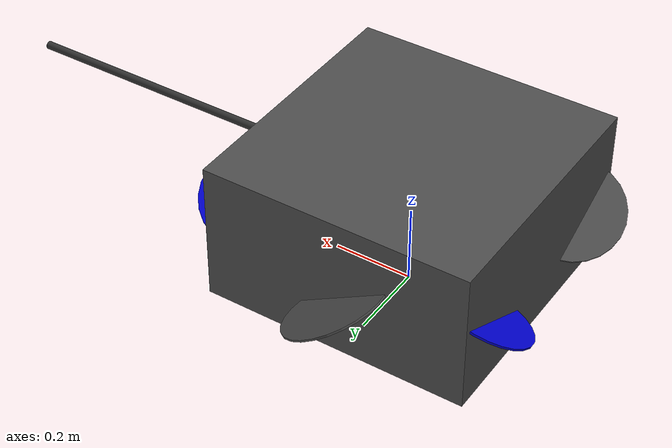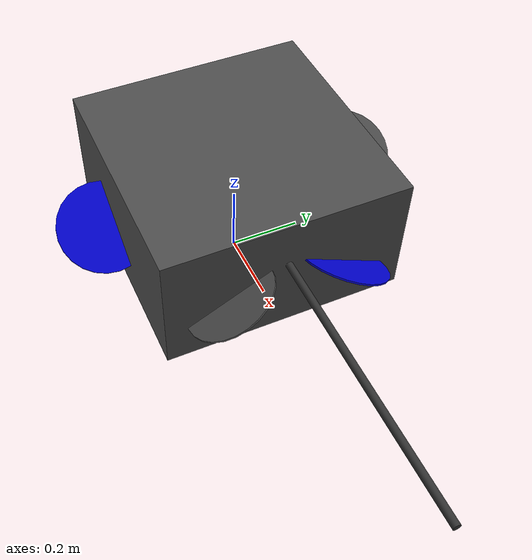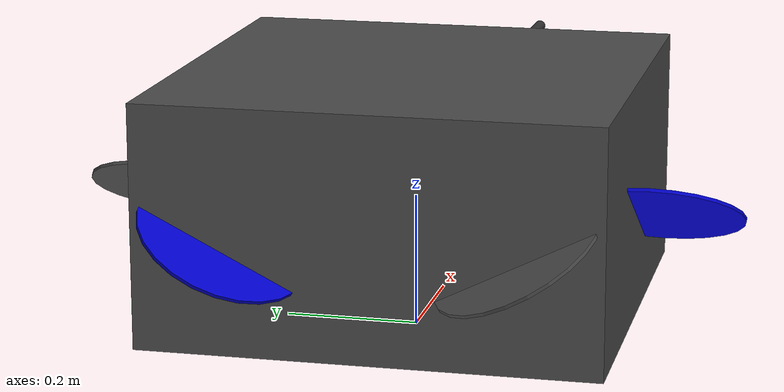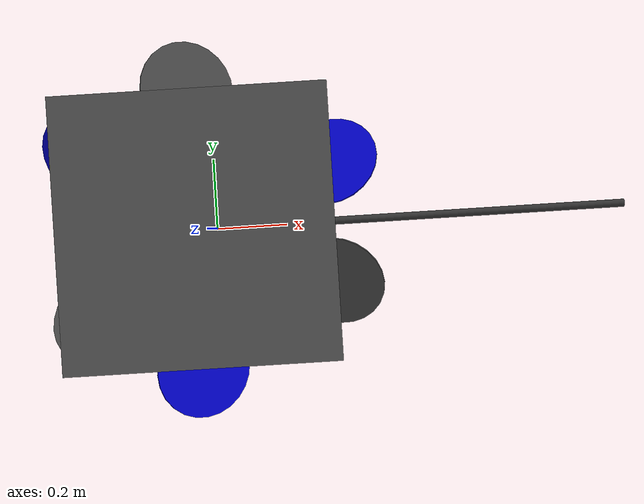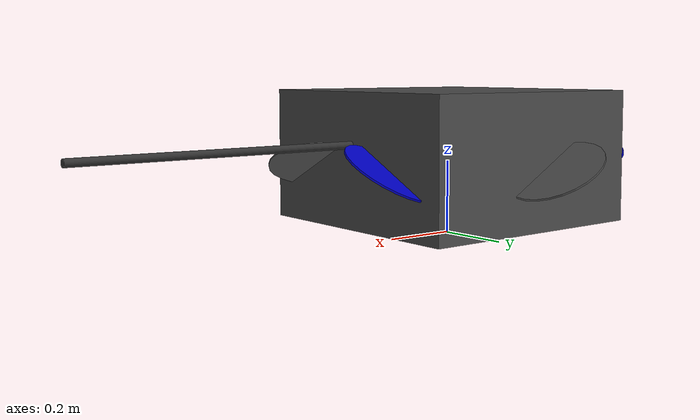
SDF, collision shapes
<?xml version="1.0" encoding="UTF-8"?>
<sdf version='1.9'>
  <model name='hexa_scorpion'>
    <pose>0 0 0.26 0 0 0.0</pose>
    <self_collide>false</self_collide>
    <static>false</static>

    <link name='base_link'>
      <pose>0 0 0 0 0 0</pose>
      <inertial>
        <pose>-0.007 0 -0.031 0 0 0</pose>
        <mass>5.02</mass>
        <inertia>
          <ixx>0.21</ixx>
          <ixy>0</ixy>
          <ixz>0</ixz>
          <iyy>0.215</iyy>
          <iyz>0</iyz>
          <izz>0.4</izz>
        </inertia>
      </inertial>
      <collision name='base_link_collision'>
        <pose>0 0 -0.0415 0 0 0</pose>
        <geometry>
          <box>
            <size>0.67 0.67 0.356</size>
          </box>
        </geometry>
        <surface>
          <contact>
            <ode>
              <min_depth>0.001</min_depth>
              <max_vel>0</max_vel>
            </ode>
          </contact>
          <friction>
            <ode/>
          </friction>
        </surface>
      </collision>
      <visual name='base_link_visual'>
        <pose>0 0 0 0 0 0</pose>
        <geometry>
          <mesh>
            <scale>0.001 0.001 0.001</scale>
            <uri>model://hexa_scorpion/meshes/main_body.stl</uri>
          </mesh>
        </geometry>
        <material>
          <ambient>0.3 0.3 0.3 1</ambient>
          <diffuse>0.3 0.3 0.3 1</diffuse>
          <specular>0.1 0.1 0.1 1</specular>
        </material>
      </visual>
      <gravity>true</gravity>
      <velocity_decay/>

      <!-- IMU sensor (replaces libgazebo_imu_plugin.so) -->
      <sensor name="imu_sensor" type="imu">
        <always_on>1</always_on>
        <update_rate>250</update_rate>
        <imu>
          <angular_velocity>
            <x>
              <noise type="gaussian">
                <mean>0</mean>
                <stddev>0.0003394</stddev>
                <dynamic_bias_stddev>3.8785e-05</dynamic_bias_stddev>
                <dynamic_bias_correlation_time>1000</dynamic_bias_correlation_time>
              </noise>
            </x>
            <y>
              <noise type="gaussian">
                <mean>0</mean>
                <stddev>0.0003394</stddev>
                <dynamic_bias_stddev>3.8785e-05</dynamic_bias_stddev>
                <dynamic_bias_correlation_time>1000</dynamic_bias_correlation_time>
              </noise>
            </y>
            <z>
              <noise type="gaussian">
                <mean>0</mean>
                <stddev>0.0003394</stddev>
                <dynamic_bias_stddev>3.8785e-05</dynamic_bias_stddev>
                <dynamic_bias_correlation_time>1000</dynamic_bias_correlation_time>
              </noise>
            </z>
          </angular_velocity>
          <linear_acceleration>
            <x>
              <noise type="gaussian">
                <mean>0</mean>
                <stddev>0.004</stddev>
                <dynamic_bias_stddev>0.006</dynamic_bias_stddev>
                <dynamic_bias_correlation_time>300</dynamic_bias_correlation_time>
              </noise>
            </x>
            <y>
              <noise type="gaussian">
                <mean>0</mean>
                <stddev>0.004</stddev>
                <dynamic_bias_stddev>0.006</dynamic_bias_stddev>
                <dynamic_bias_correlation_time>300</dynamic_bias_correlation_time>
              </noise>
            </y>
            <z>
              <noise type="gaussian">
                <mean>0</mean>
                <stddev>0.004</stddev>
                <dynamic_bias_stddev>0.006</dynamic_bias_stddev>
                <dynamic_bias_correlation_time>300</dynamic_bias_correlation_time>
              </noise>
            </z>
          </linear_acceleration>
        </imu>
      </sensor>

      <!-- Magnetometer sensor (replaces libgazebo_magnetometer_plugin.so) -->
      <sensor name="magnetometer_sensor" type="magnetometer">
        <always_on>1</always_on>
        <update_rate>100</update_rate>
        <magnetometer>
          <x>
            <noise type="gaussian">
              <stddev>0.0001</stddev>
            </noise>
          </x>
          <y>
            <noise type="gaussian">
              <stddev>0.0001</stddev>
            </noise>
          </y>
          <z>
            <noise type="gaussian">
              <stddev>0.0001</stddev>
            </noise>
          </z>
        </magnetometer>
      </sensor>

      <!-- Barometer sensor (replaces libgazebo_barometer_plugin.so) -->
      <sensor name="air_pressure_sensor" type="air_pressure">
        <always_on>1</always_on>
        <update_rate>50</update_rate>
        <air_pressure>
          <pressure>
            <noise type="gaussian">
              <mean>0</mean>
              <stddev>0.01</stddev>
            </noise>
          </pressure>
        </air_pressure>
      </sensor>

      <!-- GPS / NavSat sensor (replaces included gps model) -->
      <sensor name="navsat_sensor" type="navsat">
        <always_on>1</always_on>
        <update_rate>30</update_rate>
      </sensor>
    </link>

    <!-- Forward-facing monocular camera for visual servoing -->
    <link name="camera_link">
      <pose relative_to="base_link">0.12 0.0 0.12 0 0 0</pose>
      <inertial>
        <pose>0.03 0.03 0.03 0 0 0</pose>
        <mass>0.050</mass>
        <inertia>
          <ixx>0.00004</ixx>
          <ixy>0</ixy>
          <ixz>0</ixz>
          <iyy>0.00004</iyy>
          <iyz>0</iyz>
          <izz>0.00004</izz>
        </inertia>
      </inertial>
      <visual name="camera_housing_visual">
        <geometry>
          <box>
            <size>0.02 0.04 0.04</size>
          </box>
        </geometry>
      </visual>
      <visual name="camera_lens_visual">
        <pose>0.015 0 0 0 1.5707 0</pose>
        <geometry>
          <cylinder>
            <radius>0.008</radius>
            <length>0.01</length>
          </cylinder>
        </geometry>
      </visual>
      <sensor name="front_camera" type="camera">
        <gz_frame_id>camera_link</gz_frame_id>
        <topic>/hexa_scorpion/camera/image_raw</topic>
        <pose>0 0 0 0 0 0</pose>
        <camera>
          <horizontal_fov>1.204106566</horizontal_fov>
          <image>
            <width>1024</width>
            <height>768</height>
          </image>
          <clip>
            <near>0.1</near>
            <far>3000</far>
          </clip>
        </camera>
        <always_on>1</always_on>
        <update_rate>30</update_rate>
        <visualize>true</visualize>
      </sensor>
      <gravity>true</gravity>
      <velocity_decay/>
    </link>
    <joint name="camera_joint" type="fixed">
      <parent>base_link</parent>
      <child>camera_link</child>
      <pose relative_to="base_link">0.12 0.0 0.12 0 0 0</pose>
    </joint>

    <!-- ============== Rotors ============== -->

    <!-- Rotor 0: mid_right, CW, axis=[0.5, 0, 0.866025] in FLU -->
    <link name='rotor_0'>
      <pose>-0.02885 -0.367 -0.05993 0 -0.523698 -3.141592653</pose>
      <inertial>
        <pose>0 0 0 0 0 0</pose>
        <mass>0.005</mass>
        <inertia>
          <ixx>9.75e-07</ixx>
          <ixy>0</ixy>
          <ixz>0</ixz>
          <iyy>0.000273104</iyy>
          <iyz>0</iyz>
          <izz>0.000274004</izz>
        </inertia>
      </inertial>
      <collision name='rotor_0_collision'>
        <pose>0 0 0 0 0 0</pose>
        <geometry>
          <cylinder>
            <length>0.005</length>
            <radius>0.128</radius>
          </cylinder>
        </geometry>
        <surface>
          <contact>
            <ode/>
          </contact>
          <friction>
            <ode/>
          </friction>
        </surface>
      </collision>
      <visual name='rotor_0_visual'>
        <pose>0 0 0 0 0 0</pose>
        <geometry>
          <mesh>
            <scale>0.001 0.001 0.001</scale>
            <uri>model://hexa_scorpion/meshes/prop_ccw_assembly_remeshed_v3.stl</uri>
          </mesh>
        </geometry>
        <material>
          <ambient>0.0 0.0 0.8 1</ambient>
          <diffuse>0.0 0.0 0.8 1</diffuse>
          <specular>0.1 0.1 0.5 1</specular>
        </material>
      </visual>
      <gravity>true</gravity>
      <velocity_decay/>
    </link>
    <joint name='rotor_0_joint' type='revolute'>
      <child>rotor_0</child>
      <parent>base_link</parent>
      <axis>
        <xyz expressed_in="__model__">0.5 0 0.866025</xyz>
        <limit>
          <lower>-1e+16</lower>
          <upper>1e+16</upper>
        </limit>
        <dynamics>
          <damping>0.005</damping>
        </dynamics>
      </axis>
    </joint>

    <!-- Rotor 1: mid_left, CCW, axis=[0.5, 0, 0.866025] in FLU -->
    <link name='rotor_1'>
      <pose>-0.02885 0.367 -0.05993 0 0.523698 0</pose>
      <inertial>
        <pose>0 0 0 0 0 0</pose>
        <mass>0.005</mass>
        <inertia>
          <ixx>9.75e-07</ixx>
          <ixy>0</ixy>
          <ixz>0</ixz>
          <iyy>0.000273104</iyy>
          <iyz>0</iyz>
          <izz>0.000274004</izz>
        </inertia>
      </inertial>
      <collision name='rotor_1_collision'>
        <pose>0 0 0 0 0 0</pose>
        <geometry>
          <cylinder>
            <length>0.005</length>
            <radius>0.128</radius>
          </cylinder>
        </geometry>
        <surface>
          <contact>
            <ode/>
          </contact>
          <friction>
            <ode/>
          </friction>
        </surface>
      </collision>
      <visual name='rotor_1_visual'>
        <pose>0 0 0 0 0 0</pose>
        <geometry>
          <mesh>
            <scale>0.001 0.001 0.001</scale>
            <uri>model://hexa_scorpion/meshes/prop_cw_assembly_remeshed_v3.stl</uri>
          </mesh>
        </geometry>
        <material>
          <ambient>0.3 0.3 0.3 1</ambient>
          <diffuse>0.3 0.3 0.3 1</diffuse>
          <specular>0.1 0.1 0.1 1</specular>
        </material>
      </visual>
      <gravity>true</gravity>
      <velocity_decay/>
    </link>
    <joint name='rotor_1_joint' type='revolute'>
      <child>rotor_1</child>
      <parent>base_link</parent>
      <axis>
        <xyz expressed_in="__model__">0.5 0 0.866025</xyz>
        <limit>
          <lower>-1e+16</lower>
          <upper>1e+16</upper>
        </limit>
        <dynamics>
          <damping>0.005</damping>
        </dynamics>
      </axis>
    </joint>

    <!-- Rotor 2: front_left, CW, axis=[-0.251, 0.428, 0.866025] in FLU -->
    <link name='rotor_2'>
      <pose>0.33196 0.15903 -0.05993 0 -0.523598 -1.04719</pose>
      <inertial>
        <pose>0 0 0 0 0 0</pose>
        <mass>0.005</mass>
        <inertia>
          <ixx>9.75e-07</ixx>
          <ixy>0</ixy>
          <ixz>0</ixz>
          <iyy>0.000273104</iyy>
          <iyz>0</iyz>
          <izz>0.000274004</izz>
        </inertia>
      </inertial>
      <collision name='rotor_2_collision'>
        <pose>0 0 0 0 0 0</pose>
        <geometry>
          <cylinder>
            <length>0.005</length>
            <radius>0.128</radius>
          </cylinder>
        </geometry>
        <surface>
          <contact>
            <ode/>
          </contact>
          <friction>
            <ode/>
          </friction>
        </surface>
      </collision>
      <visual name='rotor_2_visual'>
        <pose>0 0 0 0 0 0</pose>
        <geometry>
          <mesh>
            <scale>0.001 0.001 0.001</scale>
            <uri>model://hexa_scorpion/meshes/prop_ccw_assembly_remeshed_v3.stl</uri>
          </mesh>
        </geometry>
        <material>
          <ambient>0.0 0.0 0.8 1</ambient>
          <diffuse>0.0 0.0 0.8 1</diffuse>
          <specular>0.1 0.1 0.5 1</specular>
        </material>
      </visual>
      <gravity>true</gravity>
      <velocity_decay/>
    </link>
    <joint name='rotor_2_joint' type='revolute'>
      <child>rotor_2</child>
      <parent>base_link</parent>
      <axis>
        <xyz expressed_in="__model__">-0.251 0.428 0.866025</xyz>
        <limit>
          <lower>-1e+16</lower>
          <upper>1e+16</upper>
        </limit>
        <dynamics>
          <damping>0.005</damping>
        </dynamics>
      </axis>
    </joint>

    <!-- Rotor 3: rear_right, CCW, axis=[-0.251, 0.428, 0.866025] in FLU -->
    <link name='rotor_3'>
      <pose>-0.30371 -0.20797 -0.05993 0 0.523598 2.09439510239</pose>
      <inertial>
        <pose>0 0 0 0 0 0</pose>
        <mass>0.005</mass>
        <inertia>
          <ixx>9.75e-07</ixx>
          <ixy>0</ixy>
          <ixz>0</ixz>
          <iyy>0.000273104</iyy>
          <iyz>0</iyz>
          <izz>0.000274004</izz>
        </inertia>
      </inertial>
      <collision name='rotor_3_collision'>
        <pose>0 0 0 0 0 0</pose>
        <geometry>
          <cylinder>
            <length>0.005</length>
            <radius>0.128</radius>
          </cylinder>
        </geometry>
        <surface>
          <contact>
            <ode/>
          </contact>
          <friction>
            <ode/>
          </friction>
        </surface>
      </collision>
      <visual name='rotor_3_visual'>
        <pose>0 0 0 0 0 0</pose>
        <geometry>
          <mesh>
            <scale>0.001 0.001 0.001</scale>
            <uri>model://hexa_scorpion/meshes/prop_cw_assembly_remeshed_v3.stl</uri>
          </mesh>
        </geometry>
        <material>
          <ambient>0.3 0.3 0.3 1</ambient>
          <diffuse>0.3 0.3 0.3 1</diffuse>
          <specular>0.1 0.1 0.1 1</specular>
        </material>
      </visual>
      <gravity>true</gravity>
      <velocity_decay/>
    </link>
    <joint name='rotor_3_joint' type='revolute'>
      <child>rotor_3</child>
      <parent>base_link</parent>
      <axis>
        <xyz expressed_in="__model__">-0.251 0.428 0.866025</xyz>
        <limit>
          <lower>-1e+16</lower>
          <upper>1e+16</upper>
        </limit>
        <dynamics>
          <damping>0.005</damping>
        </dynamics>
      </axis>
    </joint>

    <!-- Rotor 4: front_right, CCW, axis=[-0.251, -0.428, 0.866025] in FLU -->
    <link name='rotor_4'>
      <pose>0.33196 -0.15903 -0.05993 0.0 0.523598 -2.09439510239</pose>
      <inertial>
        <pose>0 0 0 0 0 0</pose>
        <mass>0.005</mass>
        <inertia>
          <ixx>9.75e-07</ixx>
          <ixy>0</ixy>
          <ixz>0</ixz>
          <iyy>0.000273104</iyy>
          <iyz>0</iyz>
          <izz>0.000274004</izz>
        </inertia>
      </inertial>
      <collision name='rotor_4_collision'>
        <pose>0 0 0 0 0 0</pose>
        <geometry>
          <cylinder>
            <length>0.005</length>
            <radius>0.128</radius>
          </cylinder>
        </geometry>
        <surface>
          <contact>
            <ode/>
          </contact>
          <friction>
            <ode/>
          </friction>
        </surface>
      </collision>
      <visual name='rotor_4_visual'>
        <pose>0 0 0 0 0 0</pose>
        <geometry>
          <mesh>
            <scale>0.001 0.001 0.001</scale>
            <uri>model://hexa_scorpion/meshes/prop_cw_assembly_remeshed_v3.stl</uri>
          </mesh>
        </geometry>
        <material>
          <ambient>0.3 0.3 0.3 1</ambient>
          <diffuse>0.3 0.3 0.3 1</diffuse>
          <specular>0.1 0.1 0.1 1</specular>
        </material>
      </visual>
      <gravity>true</gravity>
      <velocity_decay/>
    </link>
    <joint name='rotor_4_joint' type='revolute'>
      <child>rotor_4</child>
      <parent>base_link</parent>
      <axis>
        <xyz expressed_in="__model__">-0.251 -0.428 0.866025</xyz>
        <limit>
          <lower>-1e+16</lower>
          <upper>1e+16</upper>
        </limit>
        <dynamics>
          <damping>0.005</damping>
        </dynamics>
      </axis>
    </joint>

    <!-- Rotor 5: rear_left, CW, axis=[-0.251, -0.428, 0.866025] in FLU -->
    <link name='rotor_5'>
      <pose>-0.30371 0.20797 -0.05993 0 -0.523598 1.04719</pose>
      <inertial>
        <pose>0 0 0 0 0 0</pose>
        <mass>0.005</mass>
        <inertia>
          <ixx>9.75e-07</ixx>
          <ixy>0</ixy>
          <ixz>0</ixz>
          <iyy>0.000273104</iyy>
          <iyz>0</iyz>
          <izz>0.000274004</izz>
        </inertia>
      </inertial>
      <collision name='rotor_5_collision'>
        <pose>0 0 0 0 0 0</pose>
        <geometry>
          <cylinder>
            <length>0.005</length>
            <radius>0.128</radius>
          </cylinder>
        </geometry>
        <surface>
          <contact>
            <ode/>
          </contact>
          <friction>
            <ode/>
          </friction>
        </surface>
      </collision>
      <visual name='rotor_5_visual'>
        <pose>0 0 0 0 0 0</pose>
        <geometry>
          <mesh>
            <scale>0.001 0.001 0.001</scale>
            <uri>model://hexa_scorpion/meshes/prop_ccw_assembly_remeshed_v3.stl</uri>
          </mesh>
        </geometry>
        <material>
          <ambient>0.0 0.0 0.8 1</ambient>
          <diffuse>0.0 0.0 0.8 1</diffuse>
          <specular>0.1 0.1 0.5 1</specular>
        </material>
      </visual>
      <gravity>true</gravity>
      <velocity_decay/>
    </link>
    <joint name='rotor_5_joint' type='revolute'>
      <child>rotor_5</child>
      <parent>base_link</parent>
      <axis>
        <xyz expressed_in="__model__">-0.251 -0.428 0.866025</xyz>
        <limit>
          <lower>-1e+16</lower>
          <upper>1e+16</upper>
        </limit>
        <dynamics>
          <damping>0.005</damping>
        </dynamics>
      </axis>
    </joint>

    <!-- ============== Force/Torque Sensor Rod ============== -->

    <link name="sim_ft_sensor">
      <pose>0 0 0 0 0 3.141592653</pose>
      <inertial>
        <pose>-0.57 0 0 0 1.57 0</pose>
        <mass>0.1</mass>
        <inertia>
          <ixx>0.00834</ixx>
          <ixy>0</ixy>
          <ixz>0</ixz>
          <iyy>0.00834</iyy>
          <iyz>0</iyz>
          <izz>5e-06</izz>
        </inertia>
      </inertial>
      <collision name='ft_rod_collision'>
        <pose>-0.57 0 0 0 1.57 0</pose>
        <geometry>
          <cylinder>
            <radius>0.01</radius>
            <length>1.01</length>
          </cylinder>
        </geometry>
      </collision>
      <visual name='ft_rod_cylinder'>
        <pose>-0.57 0 0 0 1.57 0</pose>
        <geometry>
          <cylinder>
            <radius>0.01</radius>
            <length>1.0</length>
          </cylinder>
        </geometry>
        <material>
          <ambient>0.2 0.2 0.2 1</ambient>
          <diffuse>0.2 0.2 0.2 1</diffuse>
          <specular>0.1 0.1 0.1 1</specular>
        </material>
      </visual>
      <visual name='ft_sensor_body'>
        <pose>-0.13 0 0 0 1.57 0</pose>
        <geometry>
          <cylinder>
            <radius>0.032</radius>
            <length>0.015</length>
          </cylinder>
        </geometry>
        <material>
          <ambient>0.2 0.2 0.2 1</ambient>
          <diffuse>0.2 0.2 0.2 1</diffuse>
          <specular>0.1 0.1 0.1 1</specular>
        </material>
      </visual>
    </link>
    <joint name='ft_sensor_joint' type='fixed'>
      <child>sim_ft_sensor</child>
      <parent>base_link</parent>
      <pose relative_to="sim_ft_sensor">-0.13 0 0 0 0 0</pose>
      <sensor name="ft_sensor" type="force_torque">
        <always_on>true</always_on>
        <update_rate>100</update_rate>
        <force_torque>
          <frame>child</frame>
          <measure_direction>child_to_parent</measure_direction>
        </force_torque>
      </sensor>
    </joint>

    <!-- ============== Motor Model Plugins ============== -->

    <plugin filename="gz-sim-multicopter-motor-model-system"
            name="gz::sim::systems::MulticopterMotorModel">
      <jointName>rotor_0_joint</jointName>
      <linkName>rotor_0</linkName>
      <turningDirection>cw</turningDirection>
      <timeConstantUp>0.0125</timeConstantUp>
      <timeConstantDown>0.025</timeConstantDown>
      <maxRotVelocity>1800</maxRotVelocity>
      <motorConstant>1.425e-05</motorConstant>
      <momentConstant>0.06</momentConstant>
      <commandSubTopic>command/motor_speed</commandSubTopic>
      <motorNumber>0</motorNumber>
      <rotorDragCoefficient>0.000175</rotorDragCoefficient>
      <rollingMomentCoefficient>1e-06</rollingMomentCoefficient>
      <rotorVelocitySlowdownSim>10</rotorVelocitySlowdownSim>
      <motorType>velocity</motorType>
    </plugin>

    <plugin filename="gz-sim-multicopter-motor-model-system"
            name="gz::sim::systems::MulticopterMotorModel">
      <jointName>rotor_1_joint</jointName>
      <linkName>rotor_1</linkName>
      <turningDirection>ccw</turningDirection>
      <timeConstantUp>0.0125</timeConstantUp>
      <timeConstantDown>0.025</timeConstantDown>
      <maxRotVelocity>1800</maxRotVelocity>
      <motorConstant>1.425e-05</motorConstant>
      <momentConstant>0.06</momentConstant>
      <commandSubTopic>command/motor_speed</commandSubTopic>
      <motorNumber>1</motorNumber>
      <rotorDragCoefficient>0.000175</rotorDragCoefficient>
      <rollingMomentCoefficient>1e-06</rollingMomentCoefficient>
      <rotorVelocitySlowdownSim>10</rotorVelocitySlowdownSim>
      <motorType>velocity</motorType>
    </plugin>

    <plugin filename="gz-sim-multicopter-motor-model-system"
            name="gz::sim::systems::MulticopterMotorModel">
      <jointName>rotor_2_joint</jointName>
      <linkName>rotor_2</linkName>
      <turningDirection>cw</turningDirection>
      <timeConstantUp>0.0125</timeConstantUp>
      <timeConstantDown>0.025</timeConstantDown>
      <maxRotVelocity>1800</maxRotVelocity>
      <motorConstant>1.425e-05</motorConstant>
      <momentConstant>0.06</momentConstant>
      <commandSubTopic>command/motor_speed</commandSubTopic>
      <motorNumber>2</motorNumber>
      <rotorDragCoefficient>0.000175</rotorDragCoefficient>
      <rollingMomentCoefficient>1e-06</rollingMomentCoefficient>
      <rotorVelocitySlowdownSim>10</rotorVelocitySlowdownSim>
      <motorType>velocity</motorType>
    </plugin>

    <plugin filename="gz-sim-multicopter-motor-model-system"
            name="gz::sim::systems::MulticopterMotorModel">
      <jointName>rotor_3_joint</jointName>
      <linkName>rotor_3</linkName>
      <turningDirection>ccw</turningDirection>
      <timeConstantUp>0.0125</timeConstantUp>
      <timeConstantDown>0.025</timeConstantDown>
      <maxRotVelocity>1800</maxRotVelocity>
      <motorConstant>1.425e-05</motorConstant>
      <momentConstant>0.06</momentConstant>
      <commandSubTopic>command/motor_speed</commandSubTopic>
      <motorNumber>3</motorNumber>
      <rotorDragCoefficient>0.000175</rotorDragCoefficient>
      <rollingMomentCoefficient>1e-06</rollingMomentCoefficient>
      <rotorVelocitySlowdownSim>10</rotorVelocitySlowdownSim>
      <motorType>velocity</motorType>
    </plugin>

    <plugin filename="gz-sim-multicopter-motor-model-system"
            name="gz::sim::systems::MulticopterMotorModel">
      <jointName>rotor_4_joint</jointName>
      <linkName>rotor_4</linkName>
      <turningDirection>ccw</turningDirection>
      <timeConstantUp>0.0125</timeConstantUp>
      <timeConstantDown>0.025</timeConstantDown>
      <maxRotVelocity>1800</maxRotVelocity>
      <motorConstant>1.425e-05</motorConstant>
      <momentConstant>0.06</momentConstant>
      <commandSubTopic>command/motor_speed</commandSubTopic>
      <motorNumber>4</motorNumber>
      <rotorDragCoefficient>0.000175</rotorDragCoefficient>
      <rollingMomentCoefficient>1e-06</rollingMomentCoefficient>
      <rotorVelocitySlowdownSim>10</rotorVelocitySlowdownSim>
      <motorType>velocity</motorType>
    </plugin>

    <plugin filename="gz-sim-multicopter-motor-model-system"
            name="gz::sim::systems::MulticopterMotorModel">
      <jointName>rotor_5_joint</jointName>
      <linkName>rotor_5</linkName>
      <turningDirection>cw</turningDirection>
      <timeConstantUp>0.0125</timeConstantUp>
      <timeConstantDown>0.025</timeConstantDown>
      <maxRotVelocity>1800</maxRotVelocity>
      <motorConstant>1.425e-05</motorConstant>
      <momentConstant>0.06</momentConstant>
      <commandSubTopic>command/motor_speed</commandSubTopic>
      <motorNumber>5</motorNumber>
      <rotorDragCoefficient>0.000175</rotorDragCoefficient>
      <rollingMomentCoefficient>1e-06</rollingMomentCoefficient>
      <rotorVelocitySlowdownSim>10</rotorVelocitySlowdownSim>
      <motorType>velocity</motorType>
    </plugin>

    <!-- Odometry publisher for gz_bridge -->
    <plugin filename="gz-sim-odometry-publisher-system"
            name="gz::sim::systems::OdometryPublisher">
      <odom_frame>odom</odom_frame>
      <robot_base_frame>base_link</robot_base_frame>
      <dimensions>3</dimensions>
      <odom_publish_frequency>200</odom_publish_frequency>
    </plugin>

    <!-- Force/Torque sensor system plugin -->
    <plugin filename="gz-sim-forcetorque-system"
            name="gz::sim::systems::ForceTorque">
    </plugin>

  </model>
</sdf>
